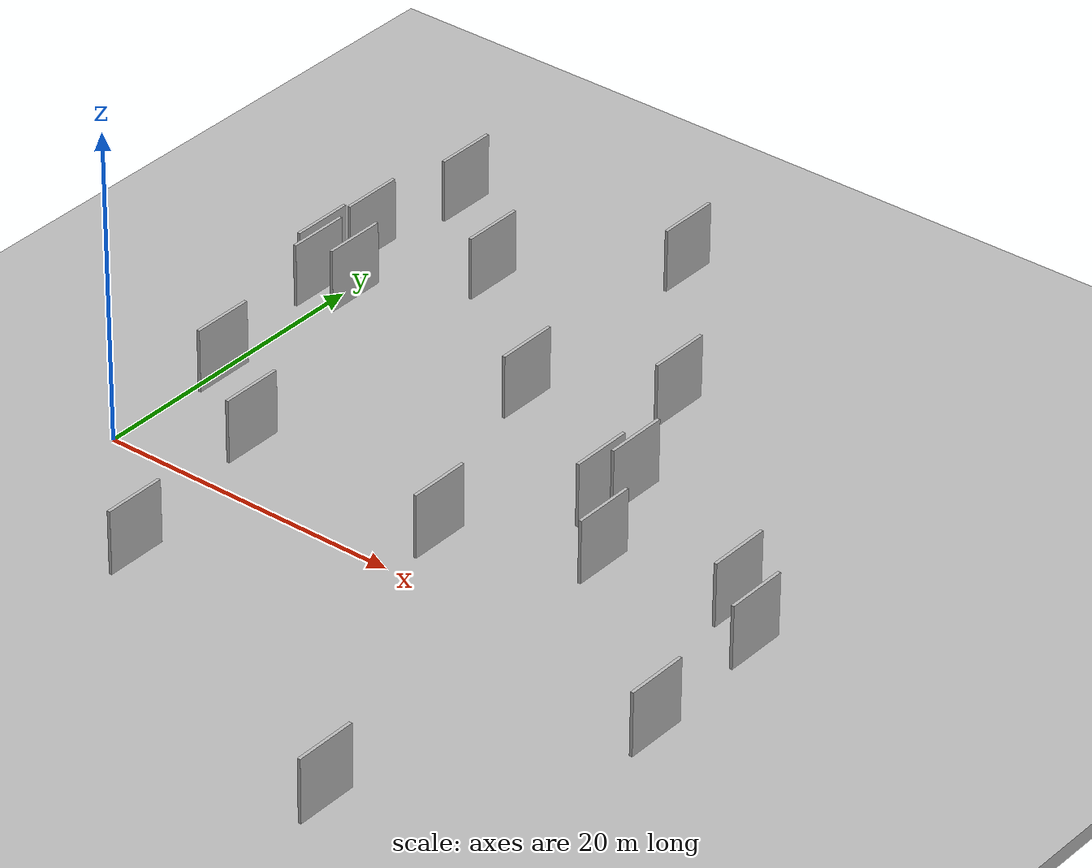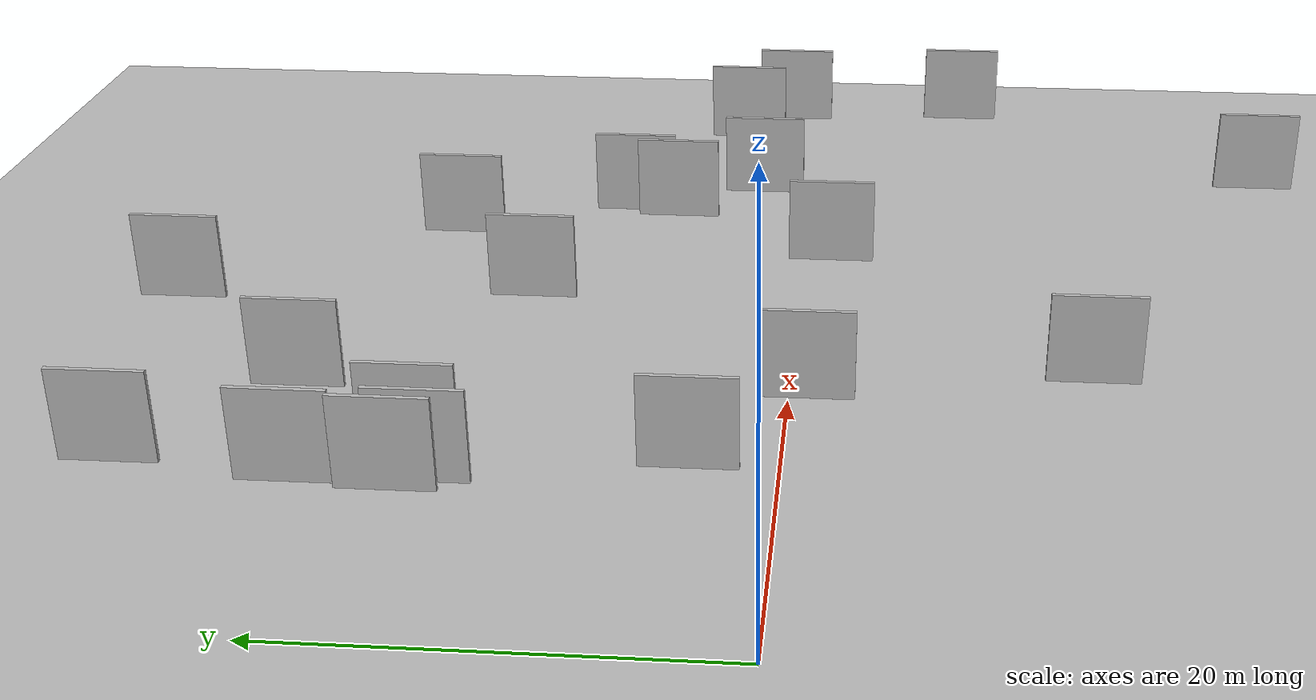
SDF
<?xml version="1.0" encoding="utf-8"?>

<sdf version="1.6">

   <world name="default">

      <gui fullscreen="0">

         <camera name="user_camera">

            <pose>-15 0 4.57585 0 0 0</pose>

            <view_controller>orbit</view_controller>

         </camera>

      </gui>

      <scene>

         <sky>

           <clouds>

             <speed>12</speed>

           </clouds>

         </sky>

         <ambient>0.4 0.4 0.4 1</ambient>

         <background>0.7 0.7 0.7 1</background>

         <shadows>1</shadows>

      </scene>

      <gravity>0 0 -9.8066</gravity>

      <magnetic_field>6e-06 2.3e-05 -4.2e-05</magnetic_field>

      <physics default="0" name="default_physics" type="ode">

         <ode>

            <solver>

               <type>quick</type>

               <iters>10</iters>

               <sor>1.0</sor>

               <use_dynamic_moi_rescaling>0</use_dynamic_moi_rescaling>

            </solver>

            <constraints>

               <cfm>0</cfm>

               <erp>0.2</erp>

               <contact_max_correcting_vel>100</contact_max_correcting_vel>

               <contact_surface_layer>0.001</contact_surface_layer>

            </constraints>

         </ode>

         <max_step_size>0.004</max_step_size>

         <real_time_factor>1</real_time_factor>

         <real_time_update_rate>250</real_time_update_rate>

      </physics>

      <light name="sun" type="directional">

         <cast_shadows>1</cast_shadows>

         <pose>0 0 10 0 0 0</pose>

         <diffuse>0.8 0.8 0.8 1</diffuse>

         <specular>0.2 0.2 0.2 1</specular>

         <attenuation>

            <range>1000</range>

            <constant>0.9</constant>

            <linear>0.01</linear>

            <quadratic>0.001</quadratic>

         </attenuation>

         <direction>-0.5 0.1 -0.9</direction>

      </light>

      <include>

         <name>ground_plane_1</name>

         <uri>model://HANNAS_ground_plane</uri>

         <pose>0 0 0  0 0 0</pose>

      </include>

      <include>

         <name>ground_plane_2</name>

         <uri>model://HANNAS_ground_plane</uri>

         <pose>100 0 0  0 0 0</pose>

      </include>

      <model name="HANNAS_wall_1">

         <static>1</static>

         <pose frame="">11.0673 20.1115 5.0 0.000000 0.000000 1.570796</pose>

         <link name="link">

            <pose frame="">0 0 2.00 0 0 0</pose>

            <collision name="collision">

               <geometry>

                  <box>

                     <size>4.00 0.2 4.00</size>

                  </box>

               </geometry>

               <max_contacts>10</max_contacts>

               <surface>

                  <contact>

                     <ode/>

                  </contact>

                  <bounce/>

                  <friction>

                     <torsional>

                        <ode/>

                     </torsional>

                     <ode/>

                  </friction>

               </surface>

            </collision>

            <visual name="visual">

               <cast_shadows>0</cast_shadows>

               <geometry>

                  <box>

                     <size>4.00 0.2 4.00</size>

                  </box>

               </geometry>

               <material>

                  <script>

                     <uri>model://HANNAS_wall/materials/scripts</uri>

                     <uri>model://HANNAS_wall/materials/textures</uri>

                     <name>vrc/HANNAS_wall</name>

                  </script>

               </material>

            </visual>

            <self_collide>0</self_collide>

            <enable_wind>0</enable_wind>

            <kinematic>0</kinematic>

         </link>

      </model>

      <model name="HANNAS_wall_2">

         <static>1</static>

         <pose frame="">25.1580 -1.7368 5.0 0.000000 0.000000 1.570796</pose>

         <link name="link">

            <pose frame="">0 0 2.00 0 0 0</pose>

            <collision name="collision">

               <geometry>

                  <box>

                     <size>4.00 0.2 4.00</size>

                  </box>

               </geometry>

               <max_contacts>10</max_contacts>

               <surface>

                  <contact>

                     <ode/>

                  </contact>

                  <bounce/>

                  <friction>

                     <torsional>

                        <ode/>

                     </torsional>

                     <ode/>

                  </friction>

               </surface>

            </collision>

            <visual name="visual">

               <cast_shadows>0</cast_shadows>

               <geometry>

                  <box>

                     <size>4.00 0.2 4.00</size>

                  </box>

               </geometry>

               <material>

                  <script>

                     <uri>model://HANNAS_wall/materials/scripts</uri>

                     <uri>model://HANNAS_wall/materials/textures</uri>

                     <name>vrc/HANNAS_wall</name>

                  </script>

               </material>

            </visual>

            <self_collide>0</self_collide>

            <enable_wind>0</enable_wind>

            <kinematic>0</kinematic>

         </link>

      </model>

      <model name="HANNAS_wall_3">

         <static>1</static>

         <pose frame="">3.2269 14.4257 5.0 0.000000 0.000000 1.570796</pose>

         <link name="link">

            <pose frame="">0 0 2.00 0 0 0</pose>

            <collision name="collision">

               <geometry>

                  <box>

                     <size>4.00 0.2 4.00</size>

                  </box>

               </geometry>

               <max_contacts>10</max_contacts>

               <surface>

                  <contact>

                     <ode/>

                  </contact>

                  <bounce/>

                  <friction>

                     <torsional>

                        <ode/>

                     </torsional>

                     <ode/>

                  </friction>

               </surface>

            </collision>

            <visual name="visual">

               <cast_shadows>0</cast_shadows>

               <geometry>

                  <box>

                     <size>4.00 0.2 4.00</size>

                  </box>

               </geometry>

               <material>

                  <script>

                     <uri>model://HANNAS_wall/materials/scripts</uri>

                     <uri>model://HANNAS_wall/materials/textures</uri>

                     <name>vrc/HANNAS_wall</name>

                  </script>

               </material>

            </visual>

            <self_collide>0</self_collide>

            <enable_wind>0</enable_wind>

            <kinematic>0</kinematic>

         </link>

      </model>

      <model name="HANNAS_wall_4">

         <static>1</static>

         <pose frame="">44.9015 -8.3818 5.0 0.000000 0.000000 1.570796</pose>

         <link name="link">

            <pose frame="">0 0 2.00 0 0 0</pose>

            <collision name="collision">

               <geometry>

                  <box>

                     <size>4.00 0.2 4.00</size>

                  </box>

               </geometry>

               <max_contacts>10</max_contacts>

               <surface>

                  <contact>

                     <ode/>

                  </contact>

                  <bounce/>

                  <friction>

                     <torsional>

                        <ode/>

                     </torsional>

                     <ode/>

                  </friction>

               </surface>

            </collision>

            <visual name="visual">

               <cast_shadows>0</cast_shadows>

               <geometry>

                  <box>

                     <size>4.00 0.2 4.00</size>

                  </box>

               </geometry>

               <material>

                  <script>

                     <uri>model://HANNAS_wall/materials/scripts</uri>

                     <uri>model://HANNAS_wall/materials/textures</uri>

                     <name>vrc/HANNAS_wall</name>

                  </script>

               </material>

            </visual>

            <self_collide>0</self_collide>

            <enable_wind>0</enable_wind>

            <kinematic>0</kinematic>

         </link>

      </model>

      <model name="HANNAS_wall_5">

         <static>1</static>

         <pose frame="">11.5011 -1.1988 5.0 0.000000 0.000000 1.570796</pose>

         <link name="link">

            <pose frame="">0 0 2.00 0 0 0</pose>

            <collision name="collision">

               <geometry>

                  <box>

                     <size>4.00 0.2 4.00</size>

                  </box>

               </geometry>

               <max_contacts>10</max_contacts>

               <surface>

                  <contact>

                     <ode/>

                  </contact>

                  <bounce/>

                  <friction>

                     <torsional>

                        <ode/>

                     </torsional>

                     <ode/>

                  </friction>

               </surface>

            </collision>

            <visual name="visual">

               <cast_shadows>0</cast_shadows>

               <geometry>

                  <box>

                     <size>4.00 0.2 4.00</size>

                  </box>

               </geometry>

               <material>

                  <script>

                     <uri>model://HANNAS_wall/materials/scripts</uri>

                     <uri>model://HANNAS_wall/materials/textures</uri>

                     <name>vrc/HANNAS_wall</name>

                  </script>

               </material>

            </visual>

            <self_collide>0</self_collide>

            <enable_wind>0</enable_wind>

            <kinematic>0</kinematic>

         </link>

      </model>

      <model name="HANNAS_wall_6">

         <static>1</static>

         <pose frame="">41.2224 3.3503 5.0 0.000000 0.000000 1.570796</pose>

         <link name="link">

            <pose frame="">0 0 2.00 0 0 0</pose>

            <collision name="collision">

               <geometry>

                  <box>

                     <size>4.00 0.2 4.00</size>

                  </box>

               </geometry>

               <max_contacts>10</max_contacts>

               <surface>

                  <contact>

                     <ode/>

                  </contact>

                  <bounce/>

                  <friction>

                     <torsional>

                        <ode/>

                     </torsional>

                     <ode/>

                  </friction>

               </surface>

            </collision>

            <visual name="visual">

               <cast_shadows>0</cast_shadows>

               <geometry>

                  <box>

                     <size>4.00 0.2 4.00</size>

                  </box>

               </geometry>

               <material>

                  <script>

                     <uri>model://HANNAS_wall/materials/scripts</uri>

                     <uri>model://HANNAS_wall/materials/textures</uri>

                     <name>vrc/HANNAS_wall</name>

                  </script>

               </material>

            </visual>

            <self_collide>0</self_collide>

            <enable_wind>0</enable_wind>

            <kinematic>0</kinematic>

         </link>

      </model>

      <model name="HANNAS_wall_7">

         <static>1</static>

         <pose frame="">13.7121 -13.1620 5.0 0.000000 0.000000 1.570796</pose>

         <link name="link">

            <pose frame="">0 0 2.00 0 0 0</pose>

            <collision name="collision">

               <geometry>

                  <box>

                     <size>4.00 0.2 4.00</size>

                  </box>

               </geometry>

               <max_contacts>10</max_contacts>

               <surface>

                  <contact>

                     <ode/>

                  </contact>

                  <bounce/>

                  <friction>

                     <torsional>

                        <ode/>

                     </torsional>

                     <ode/>

                  </friction>

               </surface>

            </collision>

            <visual name="visual">

               <cast_shadows>0</cast_shadows>

               <geometry>

                  <box>

                     <size>4.00 0.2 4.00</size>

                  </box>

               </geometry>

               <material>

                  <script>

                     <uri>model://HANNAS_wall/materials/scripts</uri>

                     <uri>model://HANNAS_wall/materials/textures</uri>

                     <name>vrc/HANNAS_wall</name>

                  </script>

               </material>

            </visual>

            <self_collide>0</self_collide>

            <enable_wind>0</enable_wind>

            <kinematic>0</kinematic>

         </link>

      </model>

      <model name="HANNAS_wall_8">

         <static>1</static>

         <pose frame="">27.2254 16.4167 5.0 0.000000 0.000000 1.570796</pose>

         <link name="link">

            <pose frame="">0 0 2.00 0 0 0</pose>

            <collision name="collision">

               <geometry>

                  <box>

                     <size>4.00 0.2 4.00</size>

                  </box>

               </geometry>

               <max_contacts>10</max_contacts>

               <surface>

                  <contact>

                     <ode/>

                  </contact>

                  <bounce/>

                  <friction>

                     <torsional>

                        <ode/>

                     </torsional>

                     <ode/>

                  </friction>

               </surface>

            </collision>

            <visual name="visual">

               <cast_shadows>0</cast_shadows>

               <geometry>

                  <box>

                     <size>4.00 0.2 4.00</size>

                  </box>

               </geometry>

               <material>

                  <script>

                     <uri>model://HANNAS_wall/materials/scripts</uri>

                     <uri>model://HANNAS_wall/materials/textures</uri>

                     <name>vrc/HANNAS_wall</name>

                  </script>

               </material>

            </visual>

            <self_collide>0</self_collide>

            <enable_wind>0</enable_wind>

            <kinematic>0</kinematic>

         </link>

      </model>

      <model name="HANNAS_wall_9">

         <static>1</static>

         <pose frame="">3.9107 13.2673 5.0 0.000000 0.000000 1.570796</pose>

         <link name="link">

            <pose frame="">0 0 2.00 0 0 0</pose>

            <collision name="collision">

               <geometry>

                  <box>

                     <size>4.00 0.2 4.00</size>

                  </box>

               </geometry>

               <max_contacts>10</max_contacts>

               <surface>

                  <contact>

                     <ode/>

                  </contact>

                  <bounce/>

                  <friction>

                     <torsional>

                        <ode/>

                     </torsional>

                     <ode/>

                  </friction>

               </surface>

            </collision>

            <visual name="visual">

               <cast_shadows>0</cast_shadows>

               <geometry>

                  <box>

                     <size>4.00 0.2 4.00</size>

                  </box>

               </geometry>

               <material>

                  <script>

                     <uri>model://HANNAS_wall/materials/scripts</uri>

                     <uri>model://HANNAS_wall/materials/textures</uri>

                     <name>vrc/HANNAS_wall</name>

                  </script>

               </material>

            </visual>

            <self_collide>0</self_collide>

            <enable_wind>0</enable_wind>

            <kinematic>0</kinematic>

         </link>

      </model>

      <model name="HANNAS_wall_10">

         <static>1</static>

         <pose frame="">20.2489 11.7637 5.0 0.000000 0.000000 1.570796</pose>

         <link name="link">

            <pose frame="">0 0 2.00 0 0 0</pose>

            <collision name="collision">

               <geometry>

                  <box>

                     <size>4.00 0.2 4.00</size>

                  </box>

               </geometry>

               <max_contacts>10</max_contacts>

               <surface>

                  <contact>

                     <ode/>

                  </contact>

                  <bounce/>

                  <friction>

                     <torsional>

                        <ode/>

                     </torsional>

                     <ode/>

                  </friction>

               </surface>

            </collision>

            <visual name="visual">

               <cast_shadows>0</cast_shadows>

               <geometry>

                  <box>

                     <size>4.00 0.2 4.00</size>

                  </box>

               </geometry>

               <material>

                  <script>

                     <uri>model://HANNAS_wall/materials/scripts</uri>

                     <uri>model://HANNAS_wall/materials/textures</uri>

                     <name>vrc/HANNAS_wall</name>

                  </script>

               </material>

            </visual>

            <self_collide>0</self_collide>

            <enable_wind>0</enable_wind>

            <kinematic>0</kinematic>

         </link>

      </model>

      <model name="HANNAS_wall_11">

         <static>1</static>

         <pose frame="">30.5673 8.2764 5.0 0.000000 0.000000 1.570796</pose>

         <link name="link">

            <pose frame="">0 0 2.00 0 0 0</pose>

            <collision name="collision">

               <geometry>

                  <box>

                     <size>4.00 0.2 4.00</size>

                  </box>

               </geometry>

               <max_contacts>10</max_contacts>

               <surface>

                  <contact>

                     <ode/>

                  </contact>

                  <bounce/>

                  <friction>

                     <torsional>

                        <ode/>

                     </torsional>

                     <ode/>

                  </friction>

               </surface>

            </collision>

            <visual name="visual">

               <cast_shadows>0</cast_shadows>

               <geometry>

                  <box>

                     <size>4.00 0.2 4.00</size>

                  </box>

               </geometry>

               <material>

                  <script>

                     <uri>model://HANNAS_wall/materials/scripts</uri>

                     <uri>model://HANNAS_wall/materials/textures</uri>

                     <name>vrc/HANNAS_wall</name>

                  </script>

               </material>

            </visual>

            <self_collide>0</self_collide>

            <enable_wind>0</enable_wind>

            <kinematic>0</kinematic>

         </link>

      </model>

      <model name="HANNAS_wall_12">

         <static>1</static>

         <pose frame="">44.2252 0.8774 5.0 0.000000 0.000000 1.570796</pose>

         <link name="link">

            <pose frame="">0 0 2.00 0 0 0</pose>

            <collision name="collision">

               <geometry>

                  <box>

                     <size>4.00 0.2 4.00</size>

                  </box>

               </geometry>

               <max_contacts>10</max_contacts>

               <surface>

                  <contact>

                     <ode/>

                  </contact>

                  <bounce/>

                  <friction>

                     <torsional>

                        <ode/>

                     </torsional>

                     <ode/>

                  </friction>

               </surface>

            </collision>

            <visual name="visual">

               <cast_shadows>0</cast_shadows>

               <geometry>

                  <box>

                     <size>4.00 0.2 4.00</size>

                  </box>

               </geometry>

               <material>

                  <script>

                     <uri>model://HANNAS_wall/materials/scripts</uri>

                     <uri>model://HANNAS_wall/materials/textures</uri>

                     <name>vrc/HANNAS_wall</name>

                  </script>

               </material>

            </visual>

            <self_collide>0</self_collide>

            <enable_wind>0</enable_wind>

            <kinematic>0</kinematic>

         </link>

      </model>

      <model name="HANNAS_wall_13">

         <static>1</static>

         <pose frame="">3.5524 18.4013 5.0 0.000000 0.000000 1.570796</pose>

         <link name="link">

            <pose frame="">0 0 2.00 0 0 0</pose>

            <collision name="collision">

               <geometry>

                  <box>

                     <size>4.00 0.2 4.00</size>

                  </box>

               </geometry>

               <max_contacts>10</max_contacts>

               <surface>

                  <contact>

                     <ode/>

                  </contact>

                  <bounce/>

                  <friction>

                     <torsional>

                        <ode/>

                     </torsional>

                     <ode/>

                  </friction>

               </surface>

            </collision>

            <visual name="visual">

               <cast_shadows>0</cast_shadows>

               <geometry>

                  <box>

                     <size>4.00 0.2 4.00</size>

                  </box>

               </geometry>

               <material>

                  <script>

                     <uri>model://HANNAS_wall/materials/scripts</uri>

                     <uri>model://HANNAS_wall/materials/textures</uri>

                     <name>vrc/HANNAS_wall</name>

                  </script>

               </material>

            </visual>

            <self_collide>0</self_collide>

            <enable_wind>0</enable_wind>

            <kinematic>0</kinematic>

         </link>

      </model>

      <model name="HANNAS_wall_14">

         <static>1</static>

         <pose frame="">29.9410 6.0697 5.0 0.000000 0.000000 1.570796</pose>

         <link name="link">

            <pose frame="">0 0 2.00 0 0 0</pose>

            <collision name="collision">

               <geometry>

                  <box>

                     <size>4.00 0.2 4.00</size>

                  </box>

               </geometry>

               <max_contacts>10</max_contacts>

               <surface>

                  <contact>

                     <ode/>

                  </contact>

                  <bounce/>

                  <friction>

                     <torsional>

                        <ode/>

                     </torsional>

                     <ode/>

                  </friction>

               </surface>

            </collision>

            <visual name="visual">

               <cast_shadows>0</cast_shadows>

               <geometry>

                  <box>

                     <size>4.00 0.2 4.00</size>

                  </box>

               </geometry>

               <material>

                  <script>

                     <uri>model://HANNAS_wall/materials/scripts</uri>

                     <uri>model://HANNAS_wall/materials/textures</uri>

                     <name>vrc/HANNAS_wall</name>

                  </script>

               </material>

            </visual>

            <self_collide>0</self_collide>

            <enable_wind>0</enable_wind>

            <kinematic>0</kinematic>

         </link>

      </model>

      <model name="HANNAS_wall_15">

         <static>1</static>

         <pose frame="">33.3578 1.9634 5.0 0.000000 0.000000 1.570796</pose>

         <link name="link">

            <pose frame="">0 0 2.00 0 0 0</pose>

            <collision name="collision">

               <geometry>

                  <box>

                     <size>4.00 0.2 4.00</size>

                  </box>

               </geometry>

               <max_contacts>10</max_contacts>

               <surface>

                  <contact>

                     <ode/>

                  </contact>

                  <bounce/>

                  <friction>

                     <torsional>

                        <ode/>

                     </torsional>

                     <ode/>

                  </friction>

               </surface>

            </collision>

            <visual name="visual">

               <cast_shadows>0</cast_shadows>

               <geometry>

                  <box>

                     <size>4.00 0.2 4.00</size>

                  </box>

               </geometry>

               <material>

                  <script>

                     <uri>model://HANNAS_wall/materials/scripts</uri>

                     <uri>model://HANNAS_wall/materials/textures</uri>

                     <name>vrc/HANNAS_wall</name>

                  </script>

               </material>

            </visual>

            <self_collide>0</self_collide>

            <enable_wind>0</enable_wind>

            <kinematic>0</kinematic>

         </link>

      </model>

      <model name="HANNAS_wall_16">

         <static>1</static>

         <pose frame="">5.6290 3.1148 5.0 0.000000 0.000000 1.570796</pose>

         <link name="link">

            <pose frame="">0 0 2.00 0 0 0</pose>

            <collision name="collision">

               <geometry>

                  <box>

                     <size>4.00 0.2 4.00</size>

                  </box>

               </geometry>

               <max_contacts>10</max_contacts>

               <surface>

                  <contact>

                     <ode/>

                  </contact>

                  <bounce/>

                  <friction>

                     <torsional>

                        <ode/>

                     </torsional>

                     <ode/>

                  </friction>

               </surface>

            </collision>

            <visual name="visual">

               <cast_shadows>0</cast_shadows>

               <geometry>

                  <box>

                     <size>4.00 0.2 4.00</size>

                  </box>

               </geometry>

               <material>

                  <script>

                     <uri>model://HANNAS_wall/materials/scripts</uri>

                     <uri>model://HANNAS_wall/materials/textures</uri>

                     <name>vrc/HANNAS_wall</name>

                  </script>

               </material>

            </visual>

            <self_collide>0</self_collide>

            <enable_wind>0</enable_wind>

            <kinematic>0</kinematic>

         </link>

      </model>

      <model name="HANNAS_wall_17">

         <static>1</static>

         <pose frame="">5.8766 14.1114 5.0 0.000000 0.000000 1.570796</pose>

         <link name="link">

            <pose frame="">0 0 2.00 0 0 0</pose>

            <collision name="collision">

               <geometry>

                  <box>

                     <size>4.00 0.2 4.00</size>

                  </box>

               </geometry>

               <max_contacts>10</max_contacts>

               <surface>

                  <contact>

                     <ode/>

                  </contact>

                  <bounce/>

                  <friction>

                     <torsional>

                        <ode/>

                     </torsional>

                     <ode/>

                  </friction>

               </surface>

            </collision>

            <visual name="visual">

               <cast_shadows>0</cast_shadows>

               <geometry>

                  <box>

                     <size>4.00 0.2 4.00</size>

                  </box>

               </geometry>

               <material>

                  <script>

                     <uri>model://HANNAS_wall/materials/scripts</uri>

                     <uri>model://HANNAS_wall/materials/textures</uri>

                     <name>vrc/HANNAS_wall</name>

                  </script>

               </material>

            </visual>

            <self_collide>0</self_collide>

            <enable_wind>0</enable_wind>

            <kinematic>0</kinematic>

         </link>

      </model>

      <model name="HANNAS_wall_18">

         <static>1</static>

         <pose frame="">4.5217 25.6828 5.0 0.000000 0.000000 1.570796</pose>

         <link name="link">

            <pose frame="">0 0 2.00 0 0 0</pose>

            <collision name="collision">

               <geometry>

                  <box>

                     <size>4.00 0.2 4.00</size>

                  </box>

               </geometry>

               <max_contacts>10</max_contacts>

               <surface>

                  <contact>

                     <ode/>

                  </contact>

                  <bounce/>

                  <friction>

                     <torsional>

                        <ode/>

                     </torsional>

                     <ode/>

                  </friction>

               </surface>

            </collision>

            <visual name="visual">

               <cast_shadows>0</cast_shadows>

               <geometry>

                  <box>

                     <size>4.00 0.2 4.00</size>

                  </box>

               </geometry>

               <material>

                  <script>

                     <uri>model://HANNAS_wall/materials/scripts</uri>

                     <uri>model://HANNAS_wall/materials/textures</uri>

                     <name>vrc/HANNAS_wall</name>

                  </script>

               </material>

            </visual>

            <self_collide>0</self_collide>

            <enable_wind>0</enable_wind>

            <kinematic>0</kinematic>

         </link>

      </model>

      <model name="HANNAS_wall_19">

         <static>1</static>

         <pose frame="">19.0740 27.8201 5.0 0.000000 0.000000 1.570796</pose>

         <link name="link">

            <pose frame="">0 0 2.00 0 0 0</pose>

            <collision name="collision">

               <geometry>

                  <box>

                     <size>4.00 0.2 4.00</size>

                  </box>

               </geometry>

               <max_contacts>10</max_contacts>

               <surface>

                  <contact>

                     <ode/>

                  </contact>

                  <bounce/>

                  <friction>

                     <torsional>

                        <ode/>

                     </torsional>

                     <ode/>

                  </friction>

               </surface>

            </collision>

            <visual name="visual">

               <cast_shadows>0</cast_shadows>

               <geometry>

                  <box>

                     <size>4.00 0.2 4.00</size>

                  </box>

               </geometry>

               <material>

                  <script>

                     <uri>model://HANNAS_wall/materials/scripts</uri>

                     <uri>model://HANNAS_wall/materials/textures</uri>

                     <name>vrc/HANNAS_wall</name>

                  </script>

               </material>

            </visual>

            <self_collide>0</self_collide>

            <enable_wind>0</enable_wind>

            <kinematic>0</kinematic>

         </link>

      </model>

      <model name="HANNAS_wall_20">

         <static>1</static>

         <pose frame="">35.6254 -23.3323 5.0 0.000000 0.000000 1.570796</pose>

         <link name="link">

            <pose frame="">0 0 2.00 0 0 0</pose>

            <collision name="collision">

               <geometry>

                  <box>

                     <size>4.00 0.2 4.00</size>

                  </box>

               </geometry>

               <max_contacts>10</max_contacts>

               <surface>

                  <contact>

                     <ode/>

                  </contact>

                  <bounce/>

                  <friction>

                     <torsional>

                        <ode/>

                     </torsional>

                     <ode/>

                  </friction>

               </surface>

            </collision>

            <visual name="visual">

               <cast_shadows>0</cast_shadows>

               <geometry>

                  <box>

                     <size>4.00 0.2 4.00</size>

                  </box>

               </geometry>

               <material>

                  <script>

                     <uri>model://HANNAS_wall/materials/scripts</uri>

                     <uri>model://HANNAS_wall/materials/textures</uri>

                     <name>vrc/HANNAS_wall</name>

                  </script>

               </material>

            </visual>

            <self_collide>0</self_collide>

            <enable_wind>0</enable_wind>

            <kinematic>0</kinematic>

         </link>

      </model>

   </world>

</sdf>

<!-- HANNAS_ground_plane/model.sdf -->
<sdf version="1.4">
<model name="HANNAS_ground_plane">
  <static>true</static>
    <link name="link">
      <collision name="collision">
        <geometry>
          <plane>
            <normal>0 0 1</normal>
            <size>1000 1000</size>
          </plane>
        </geometry>
        <surface>
          <friction>
            <ode>
              <mu>100</mu>
              <mu2>50</mu2>
            </ode>
          </friction>
        </surface>
      </collision>
      <visual name="visual">
        <cast_shadows>false</cast_shadows>
        <geometry>
          <plane>
            <normal>0 0 1</normal>
            <size>1000 1000</size>
          </plane>
        </geometry>
        <material>
          <script>
            <uri>model://HANNAS_ground_plane/materials/scripts/HANNAS_ground_plane.material</uri>
	    <uri>model://HANNAS_ground_plane/materials/textures</uri>
            <name>HANNASGroundPlane/Image</name>
          </script>
        </material>
      </visual>
    </link>
  </model>
</sdf>
